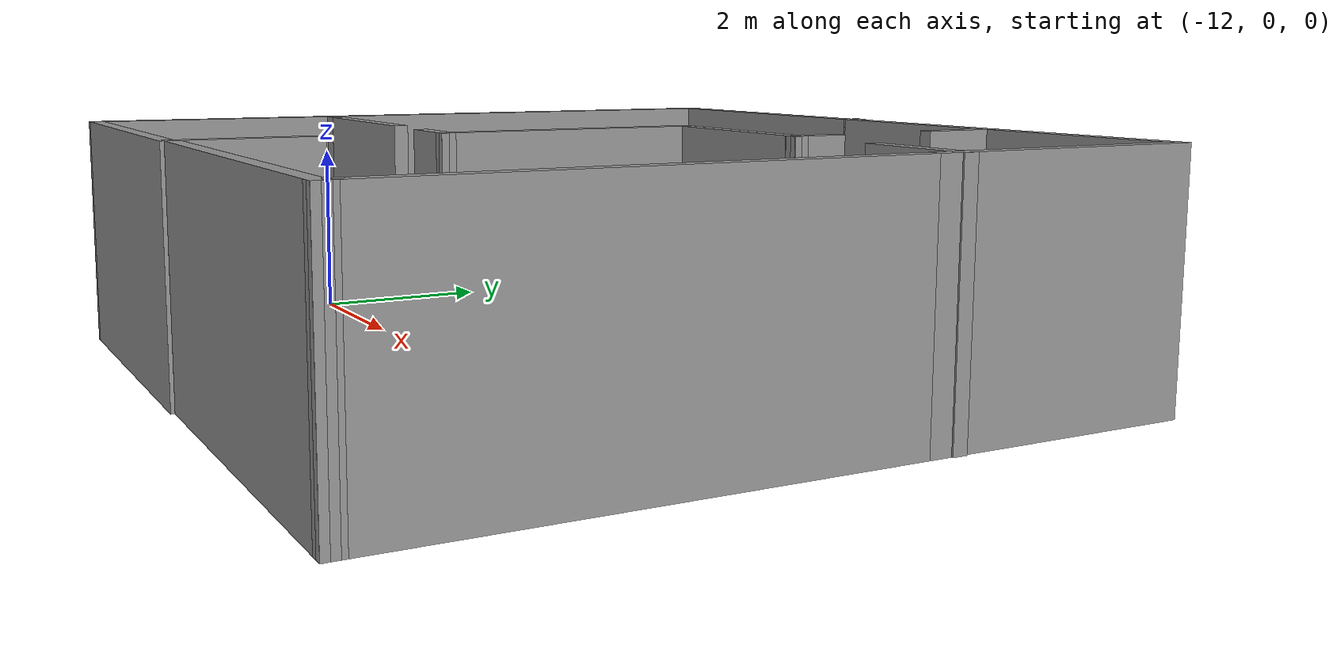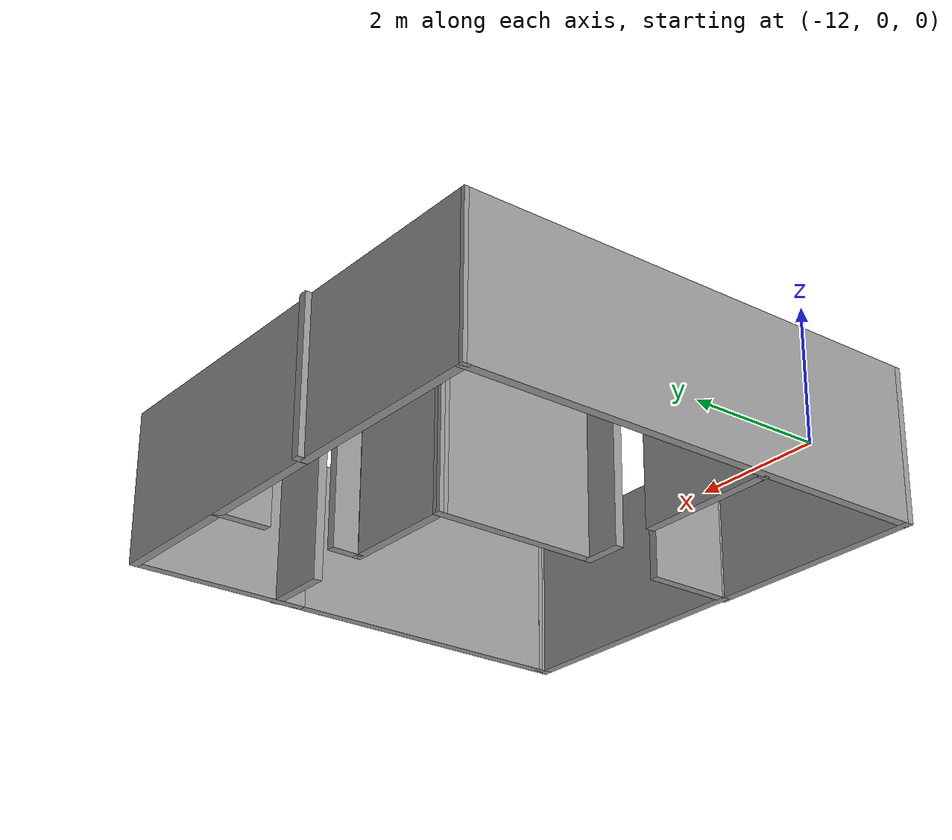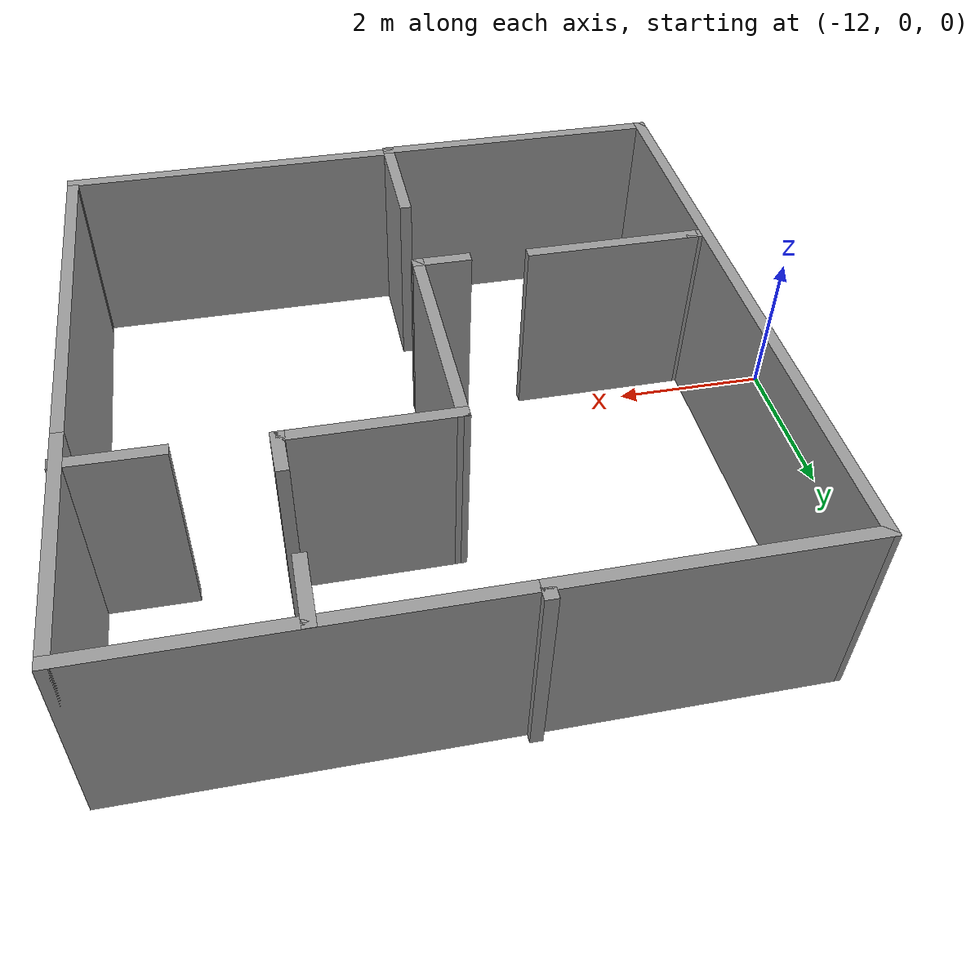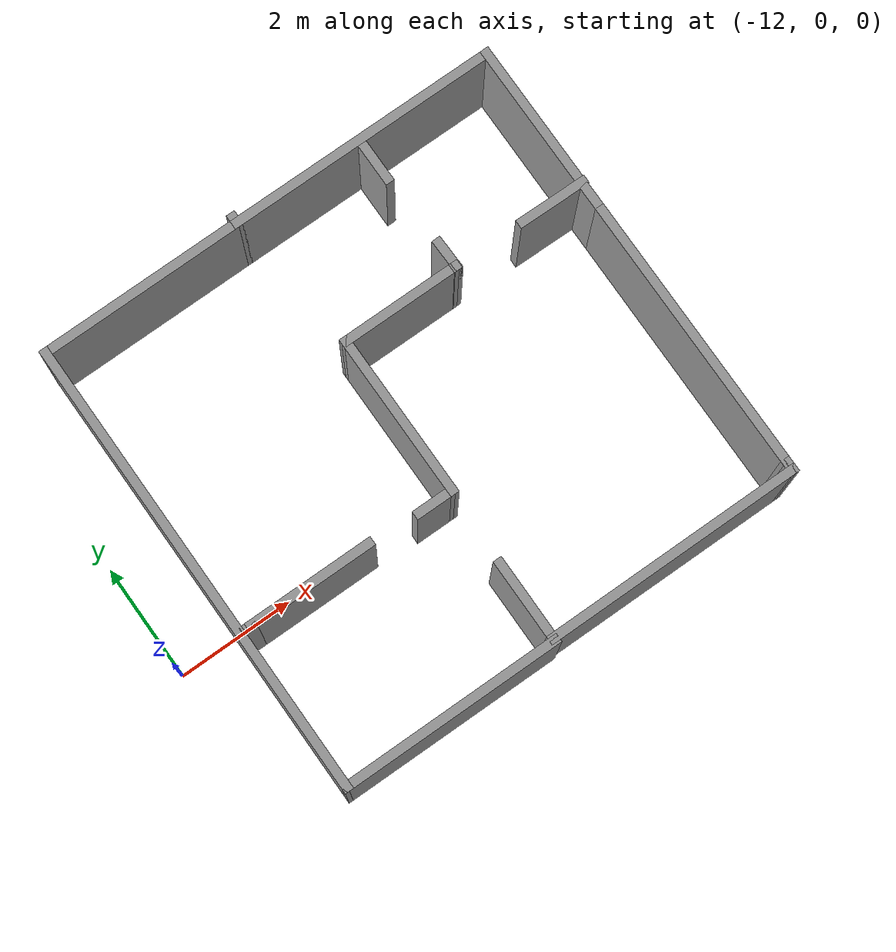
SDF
<?xml version='1.0'?>
<sdf version='1.6'>
  <model name='mapa_tutorial'>
    <pose frame=''>-6.90053 0.969547 0 0 -0 0</pose>
    <link name='Wall_0'>
      <collision name='Wall_0_Collision'>
        <geometry>
          <box>
            <size>8 0.15 2.5</size>
          </box>
        </geometry>
        <pose frame=''>0 0 1.25 0 -0 0</pose>
      </collision>
      <visual name='Wall_0_Visual'>
        <pose frame=''>0 0 1.25 0 -0 0</pose>
        <geometry>
          <box>
            <size>8 0.15 2.5</size>
          </box>
        </geometry>
        <material>
          <script>
            <uri>file://media/materials/scripts/gazebo.material</uri>
            <name>Gazebo/Grey</name>
          </script>
          <ambient>1 1 1 1</ambient>
        </material>
        <meta>
          <layer>0</layer>
        </meta>
      </visual>
      <pose frame=''>-4.04018 -0.052808 0 0 -0 1.5708</pose>
    </link>
    <link name='Wall_1'>
      <collision name='Wall_1_Collision'>
        <geometry>
          <box>
            <size>3.60318 0.15 2.5</size>
          </box>
        </geometry>
        <pose frame=''>0 0 1.25 0 -0 0</pose>
      </collision>
      <visual name='Wall_1_Visual'>
        <pose frame=''>0 0 1.25 0 -0 0</pose>
        <geometry>
          <box>
            <size>3.60318 0.15 2.5</size>
          </box>
        </geometry>
        <material>
          <script>
            <uri>file://media/materials/scripts/gazebo.material</uri>
            <name>Gazebo/Grey</name>
          </script>
          <ambient>1 1 1 1</ambient>
        </material>
        <meta>
          <layer>0</layer>
        </meta>
      </visual>
      <pose frame=''>-2.3136 3.87649 0 0 -0 0.00249</pose>
    </link>
    <link name='Wall_10'>
      <collision name='Wall_10_Collision'>
        <geometry>
          <box>
            <size>1.5 0.15 2.5</size>
          </box>
        </geometry>
        <pose frame=''>0 0 1.25 0 -0 0</pose>
      </collision>
      <visual name='Wall_10_Visual'>
        <pose frame=''>0 0 1.25 0 -0 0</pose>
        <geometry>
          <box>
            <size>1.5 0.15 2.5</size>
          </box>
        </geometry>
        <material>
          <script>
            <uri>file://media/materials/scripts/gazebo.material</uri>
            <name>Gazebo/Grey</name>
          </script>
          <ambient>1 1 1 1</ambient>
        </material>
        <meta>
          <layer>0</layer>
        </meta>
      </visual>
      <pose frame=''>-0.327189 -3.26663 0 0 -0 1.5708</pose>
    </link>
    <link name='Wall_13'>
      <collision name='Wall_13_Collision'>
        <geometry>
          <box>
            <size>3.86266 0.15 2.5</size>
          </box>
        </geometry>
        <pose frame=''>0 0 1.25 0 -0 0</pose>
      </collision>
      <visual name='Wall_13_Visual'>
        <pose frame=''>0 0 1.25 0 -0 0</pose>
        <geometry>
          <box>
            <size>3.86266 0.15 2.5</size>
          </box>
        </geometry>
        <material>
          <script>
            <uri>file://media/materials/scripts/gazebo.material</uri>
            <name>Gazebo/Grey</name>
          </script>
          <ambient>1 1 1 1</ambient>
        </material>
        <meta>
          <layer>0</layer>
        </meta>
      </visual>
      <pose frame=''>-2.18386 -3.97927 0 0 0 -0.000788</pose>
    </link>
    <link name='Wall_15'>
      <collision name='Wall_15_Collision'>
        <geometry>
          <box>
            <size>2.25 0.15 2.5</size>
          </box>
        </geometry>
        <pose frame=''>0 0 1.25 0 -0 0</pose>
      </collision>
      <visual name='Wall_15_Visual'>
        <pose frame=''>0 0 1.25 0 -0 0</pose>
        <geometry>
          <box>
            <size>2.25 0.15 2.5</size>
          </box>
        </geometry>
        <material>
          <script>
            <uri>file://media/materials/scripts/gazebo.material</uri>
            <name>Gazebo/Grey</name>
          </script>
          <ambient>1 1 1 1</ambient>
        </material>
        <meta>
          <layer>0</layer>
        </meta>
      </visual>
      <pose frame=''>-2.7891 -1.24149 0 0 -0 3.14159</pose>
    </link>
    <link name='Wall_16'>
      <collision name='Wall_16_Collision'>
        <geometry>
          <box>
            <size>0.25 0.15 2.5</size>
          </box>
        </geometry>
        <pose frame=''>0 0 1.25 0 -0 0</pose>
      </collision>
      <visual name='Wall_16_Visual'>
        <pose frame=''>0 0 1.25 0 -0 0</pose>
        <geometry>
          <box>
            <size>0.25 0.15 2.5</size>
          </box>
        </geometry>
        <material>
          <script>
            <uri>file://media/materials/scripts/gazebo.material</uri>
            <name>Gazebo/Grey</name>
          </script>
          <ambient>1 1 1 1</ambient>
        </material>
        <meta>
          <layer>0</layer>
        </meta>
      </visual>
      <pose frame=''>-3.8891 -1.24149 0 0 -0 3.14159</pose>
    </link>
    <link name='Wall_18'>
      <collision name='Wall_18_Collision'>
        <geometry>
          <box>
            <size>0.75 0.15 2.5</size>
          </box>
        </geometry>
        <pose frame=''>0 0 1.25 0 -0 0</pose>
      </collision>
      <visual name='Wall_18_Visual'>
        <pose frame=''>0 0 1.25 0 -0 0</pose>
        <geometry>
          <box>
            <size>0.75 0.15 2.5</size>
          </box>
        </geometry>
        <material>
          <script>
            <uri>file://media/materials/scripts/gazebo.material</uri>
            <name>Gazebo/Grey</name>
          </script>
          <ambient>1 1 1 1</ambient>
        </material>
        <meta>
          <layer>0</layer>
        </meta>
      </visual>
      <pose frame=''>-0.57343 -1.2977 0 0 -0 0</pose>
    </link>
    <link name='Wall_19'>
      <collision name='Wall_19_Collision'>
        <geometry>
          <box>
            <size>2.89316 0.15 2.5</size>
          </box>
        </geometry>
        <pose frame=''>0 0 1.25 0 -0 0</pose>
      </collision>
      <visual name='Wall_19_Visual'>
        <pose frame=''>0 0 1.25 0 -0 0</pose>
        <geometry>
          <box>
            <size>2.89316 0.15 2.5</size>
          </box>
        </geometry>
        <material>
          <script>
            <uri>file://media/materials/scripts/gazebo.material</uri>
            <name>Gazebo/Grey</name>
          </script>
          <ambient>1 1 1 1</ambient>
        </material>
        <meta>
          <layer>0</layer>
        </meta>
      </visual>
      <pose frame=''>-0.275505 0.073879 0 0 -0 1.57231</pose>
    </link>
    <link name='Wall_20'>
      <collision name='Wall_20_Collision'>
        <geometry>
          <box>
            <size>2.15116 0.15 2.5</size>
          </box>
        </geometry>
        <pose frame=''>0 0 1.25 0 -0 0</pose>
      </collision>
      <visual name='Wall_20_Visual'>
        <pose frame=''>0 0 1.25 0 -0 0</pose>
        <geometry>
          <box>
            <size>2.15116 0.15 2.5</size>
          </box>
        </geometry>
        <material>
          <script>
            <uri>file://media/materials/scripts/gazebo.material</uri>
            <name>Gazebo/Grey</name>
          </script>
          <ambient>1 1 1 1</ambient>
        </material>
        <meta>
          <layer>0</layer>
        </meta>
      </visual>
      <pose frame=''>0.722998 1.44546 0 0 -0 0</pose>
    </link>
    <link name='Wall_21'>
      <collision name='Wall_21_Collision'>
        <geometry>
          <box>
            <size>0.16 0.15 2.5</size>
          </box>
        </geometry>
        <pose frame=''>0 0 1.25 0 -0 0</pose>
      </collision>
      <visual name='Wall_21_Visual'>
        <pose frame=''>0 0 1.25 0 -0 0</pose>
        <geometry>
          <box>
            <size>0.16 0.15 2.5</size>
          </box>
        </geometry>
        <material>
          <script>
            <uri>file://media/materials/scripts/gazebo.material</uri>
            <name>Gazebo/Grey</name>
          </script>
          <ambient>1 1 1 1</ambient>
        </material>
        <meta>
          <layer>0</layer>
        </meta>
      </visual>
      <pose frame=''>1.72858 1.44546 0 0 -0 0</pose>
    </link>
    <link name='Wall_22'>
      <collision name='Wall_22_Collision'>
        <geometry>
          <box>
            <size>0.58857 0.15 2.5</size>
          </box>
        </geometry>
        <pose frame=''>0 0 1.25 0 -0 0</pose>
      </collision>
      <visual name='Wall_22_Visual'>
        <pose frame=''>0 0 1.25 0 -0 0</pose>
        <geometry>
          <box>
            <size>0.58857 0.15 2.5</size>
          </box>
        </geometry>
        <material>
          <script>
            <uri>file://media/materials/scripts/gazebo.material</uri>
            <name>Gazebo/Grey</name>
          </script>
          <ambient>1 1 1 1</ambient>
        </material>
        <meta>
          <layer>0</layer>
        </meta>
      </visual>
      <pose frame=''>1.72858 1.66469 0 0 -0 1.5936</pose>
    </link>
    <link name='Wall_24'>
      <collision name='Wall_24_Collision'>
        <geometry>
          <box>
            <size>1.25199 0.15 2.5</size>
          </box>
        </geometry>
        <pose frame=''>0 0 1.25 0 -0 0</pose>
      </collision>
      <visual name='Wall_24_Visual'>
        <pose frame=''>0 0 1.25 0 -0 0</pose>
        <geometry>
          <box>
            <size>1.25199 0.15 2.5</size>
          </box>
        </geometry>
        <material>
          <script>
            <uri>file://media/materials/scripts/gazebo.material</uri>
            <name>Gazebo/Grey</name>
          </script>
          <ambient>1 1 1 1</ambient>
        </material>
        <meta>
          <layer>0</layer>
        </meta>
      </visual>
      <pose frame=''>3.48864 1.41735 0 0 0 -0.010204</pose>
    </link>
    <link name='Wall_28'>
      <collision name='Wall_28_Collision'>
        <geometry>
          <box>
            <size>0.88786 0.15 2.5</size>
          </box>
        </geometry>
        <pose frame=''>0 0 1.25 0 -0 0</pose>
      </collision>
      <visual name='Wall_28_Visual'>
        <pose frame=''>0 0 1.25 0 -0 0</pose>
        <geometry>
          <box>
            <size>0.88786 0.15 2.5</size>
          </box>
        </geometry>
        <material>
          <script>
            <uri>file://media/materials/scripts/gazebo.material</uri>
            <name>Gazebo/Grey</name>
          </script>
          <ambient>1 1 1 1</ambient>
        </material>
        <meta>
          <layer>0</layer>
        </meta>
      </visual>
      <pose frame=''>1.66397 3.50897 0 0 0 -1.5708</pose>
    </link>
    <link name='Wall_3'>
      <collision name='Wall_3_Collision'>
        <geometry>
          <box>
            <size>0.25 0.15 2.5</size>
          </box>
        </geometry>
        <pose frame=''>0 0 1.25 0 -0 0</pose>
      </collision>
      <visual name='Wall_3_Visual'>
        <pose frame=''>0 0 1.25 0 -0 0</pose>
        <geometry>
          <box>
            <size>0.25 0.15 2.5</size>
          </box>
        </geometry>
        <material>
          <script>
            <uri>file://media/materials/scripts/gazebo.material</uri>
            <name>Gazebo/Grey</name>
          </script>
          <ambient>1 1 1 1</ambient>
        </material>
        <meta>
          <layer>0</layer>
        </meta>
      </visual>
      <pose frame=''>-0.578412 3.93079 0 0 -0 1.5708</pose>
    </link>
    <link name='Wall_5'>
      <collision name='Wall_5_Collision'>
        <geometry>
          <box>
            <size>4.75 0.15 2.5</size>
          </box>
        </geometry>
        <pose frame=''>0 0 1.25 0 -0 0</pose>
      </collision>
      <visual name='Wall_5_Visual'>
        <pose frame=''>0 0 1.25 0 -0 0</pose>
        <geometry>
          <box>
            <size>4.75 0.15 2.5</size>
          </box>
        </geometry>
        <material>
          <script>
            <uri>file://media/materials/scripts/gazebo.material</uri>
            <name>Gazebo/Grey</name>
          </script>
          <ambient>1 1 1 1</ambient>
        </material>
        <meta>
          <layer>0</layer>
        </meta>
      </visual>
      <pose frame=''>1.72159 3.88079 0 0 -0 0</pose>
    </link>
    <link name='Wall_6'>
      <collision name='Wall_6_Collision'>
        <geometry>
          <box>
            <size>3 0.15 2.5</size>
          </box>
        </geometry>
        <pose frame=''>0 0 1.25 0 -0 0</pose>
      </collision>
      <visual name='Wall_6_Visual'>
        <pose frame=''>0 0 1.25 0 -0 0</pose>
        <geometry>
          <box>
            <size>3 0.15 2.5</size>
          </box>
        </geometry>
        <material>
          <script>
            <uri>file://media/materials/scripts/gazebo.material</uri>
            <name>Gazebo/Grey</name>
          </script>
          <ambient>1 1 1 1</ambient>
        </material>
        <meta>
          <layer>0</layer>
        </meta>
      </visual>
      <pose frame=''>4.02159 2.45579 0 0 0 -1.5708</pose>
    </link>
    <link name='Wall_7'>
      <collision name='Wall_7_Collision'>
        <geometry>
          <box>
            <size>5 0.15 2.5</size>
          </box>
        </geometry>
        <pose frame=''>0 0 1.25 0 -0 0</pose>
      </collision>
      <visual name='Wall_7_Visual'>
        <pose frame=''>0 0 1.25 0 -0 0</pose>
        <geometry>
          <box>
            <size>5 0.15 2.5</size>
          </box>
        </geometry>
        <material>
          <script>
            <uri>file://media/materials/scripts/gazebo.material</uri>
            <name>Gazebo/Grey</name>
          </script>
          <ambient>1 1 1 1</ambient>
        </material>
        <meta>
          <layer>0</layer>
        </meta>
      </visual>
      <pose frame=''>4.02159 -1.39421 0 0 0 -1.5708</pose>
    </link>
    <link name='Wall_8'>
      <collision name='Wall_8_Collision'>
        <geometry>
          <box>
            <size>0.272424 0.15 2.5</size>
          </box>
        </geometry>
        <pose frame=''>0 0 1.25 0 -0 0</pose>
      </collision>
      <visual name='Wall_8_Visual'>
        <pose frame=''>0 0 1.25 0 -0 0</pose>
        <geometry>
          <box>
            <size>0.272424 0.15 2.5</size>
          </box>
        </geometry>
        <material>
          <script>
            <uri>file://media/materials/scripts/gazebo.material</uri>
            <name>Gazebo/Grey</name>
          </script>
          <ambient>1 1 1 1</ambient>
        </material>
        <meta>
          <layer>0</layer>
        </meta>
      </visual>
      <pose frame=''>4.0222 -3.88042 0 0 0 -1.56081</pose>
    </link>
    <link name='Wall_9'>
      <collision name='Wall_9_Collision'>
        <geometry>
          <box>
            <size>4.5 0.15 2.5</size>
          </box>
        </geometry>
        <pose frame=''>0 0 1.25 0 -0 0</pose>
      </collision>
      <visual name='Wall_9_Visual'>
        <pose frame=''>0 0 1.25 0 -0 0</pose>
        <geometry>
          <box>
            <size>4.5 0.15 2.5</size>
          </box>
        </geometry>
        <material>
          <script>
            <uri>file://media/materials/scripts/gazebo.material</uri>
            <name>Gazebo/Grey</name>
          </script>
          <ambient>1 1 1 1</ambient>
        </material>
        <meta>
          <layer>0</layer>
        </meta>
      </visual>
      <pose frame=''>1.84781 -3.94163 0 0 -0 3.14159</pose>
    </link>
    <static>1</static>
  </model>
</sdf>
